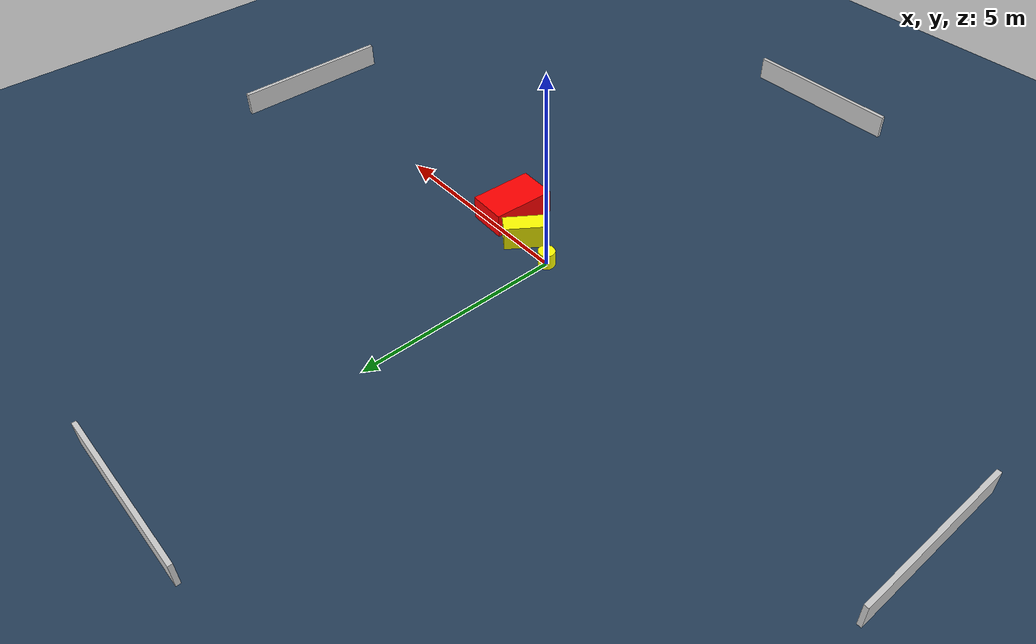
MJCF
<?xml version="1.0" ?>
<mujoco model="generated_environment">
  <option timestep="0.01" integrator="RK4" cone="elliptic"/>
  <default>
    <geom density="1"/>
  </default>
  <asset>
    <texture builtin="gradient" height="3072" name="skybox" rgb1="0.3 0.5 0.7" rgb2="0 0 0" type="skybox" width="512"/>
    <texture builtin="checker" height="300" name="groundplane" rgb1="0.2 0.3 0.4" rgb2="0.1 0.2 0.3" type="2d" width="300"/>
    <material name="groundplane" reflectance="0.2" texrepeat="5 5" texture="groundplane"/>
  </asset>
  <worldbody>
    <light dir="0 0 -1" directional="true" pos="0 0 1.5"/>
    <geom condim="3" friction="0.5 0.005 0.001" material="groundplane" name="floor" pos="0 0 0" size="0 0 0.05" type="plane"/>
    <body name="walls">
      <geom name="wall_1" condim="4" pos="-10.0 0.0 0.3" rgba="0.800000011920929 0.800000011920929 0.800000011920929 1.0" size="0.05 2.0 0.3" type="box"/>
      <geom name="wall_2" condim="4" pos="10.0 0.0 0.3" rgba="0.800000011920929 0.800000011920929 0.800000011920929 1.0" size="0.05 2.0 0.3" type="box"/>
      <geom name="wall_3" condim="4" pos="0.0 -10.0 0.3" rgba="0.800000011920929 0.800000011920929 0.800000011920929 1.0" size="2.0 0.05 0.3" type="box"/>
      <geom name="wall_4" condim="4" pos="0.0 10.0 0.3" rgba="0.800000011920929 0.800000011920929 0.800000011920929 1.0" size="2.0 0.05 0.3" type="box"/>
    </body>
    <body name="robot">
      <joint name="joint_x" type="slide" pos="0 0 0" axis="1 0 0"/>
      <joint name="joint_y" type="slide" pos="0 0 0" axis="0 1 0"/>
      <geom name="robot" type="cylinder" pos="0.0 0.0 0.2" size="0.2 0.2 0.0" mass="5.0" friction="1.0 0.005 0.0001" condim="4" rgba="1.0 1.0 0.0 1.0"/>
    </body>
    <body name="obstacle_1_movable">
      <geom name="obstacle_1_movable" condim="4" pos="0.9126336134598617 -0.14800076235654122 0.3" euler="0 0 54.67323424245969" friction="0.0 0.005 0.001" rgba="1.0 1.0 0.0 1.0" size="0.5209089147027581 0.22397382713261166 0.3" type="box" mass="0.1"/>
      <joint type="free"/>
    </body>
    <body name="obstacle_2_static">
      <geom name="obstacle_2_static" condim="4" pos="1.899983836439191 -0.5836198750189114 0.3" euler="0 0 357.5921118172031" friction="0.0 0.005 0.001" rgba="1.0 0.0 0.0 1.0" size="0.47401683413628243 0.7693837949366737 0.3" type="box"/>
    </body>
  </worldbody>
  <actuator>
    <motor name="actuator_x" joint="joint_x" gear="1" ctrlrange="-1 1"/>
    <motor name="actuator_y" joint="joint_y" gear="1" ctrlrange="-1 1"/>
  </actuator>
</mujoco>
